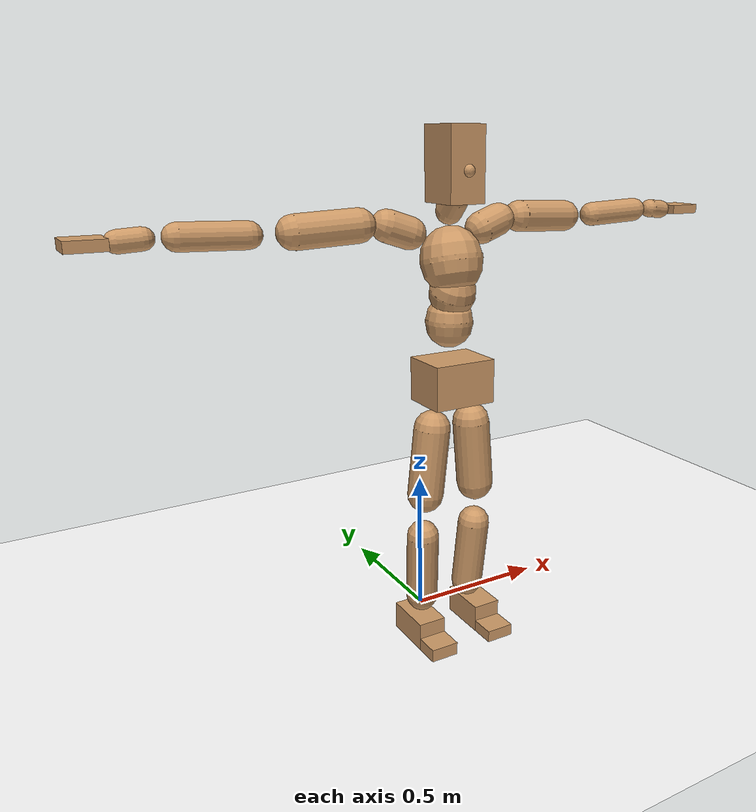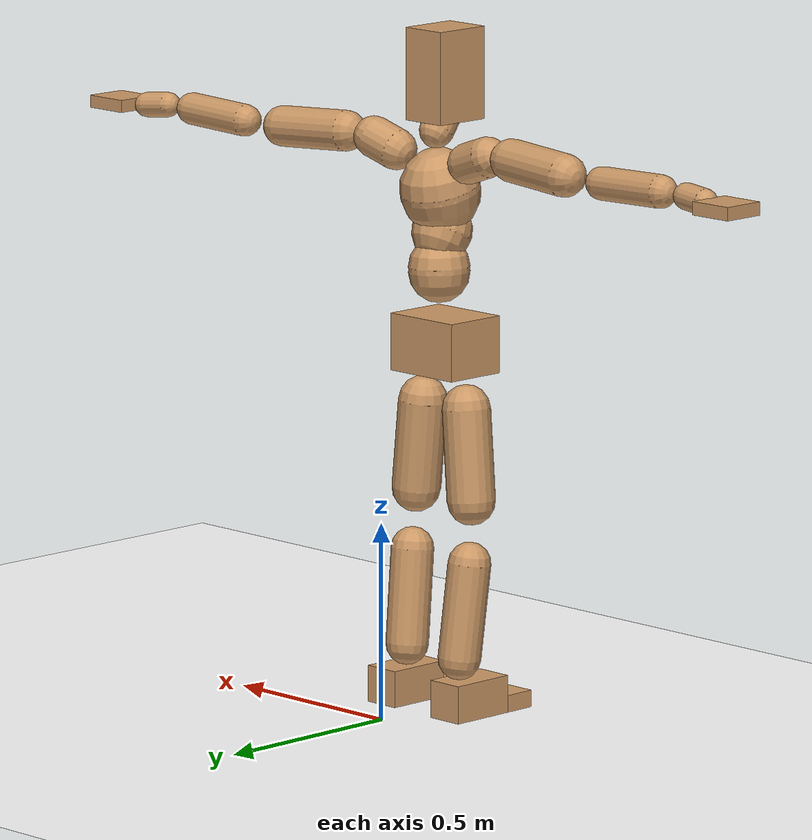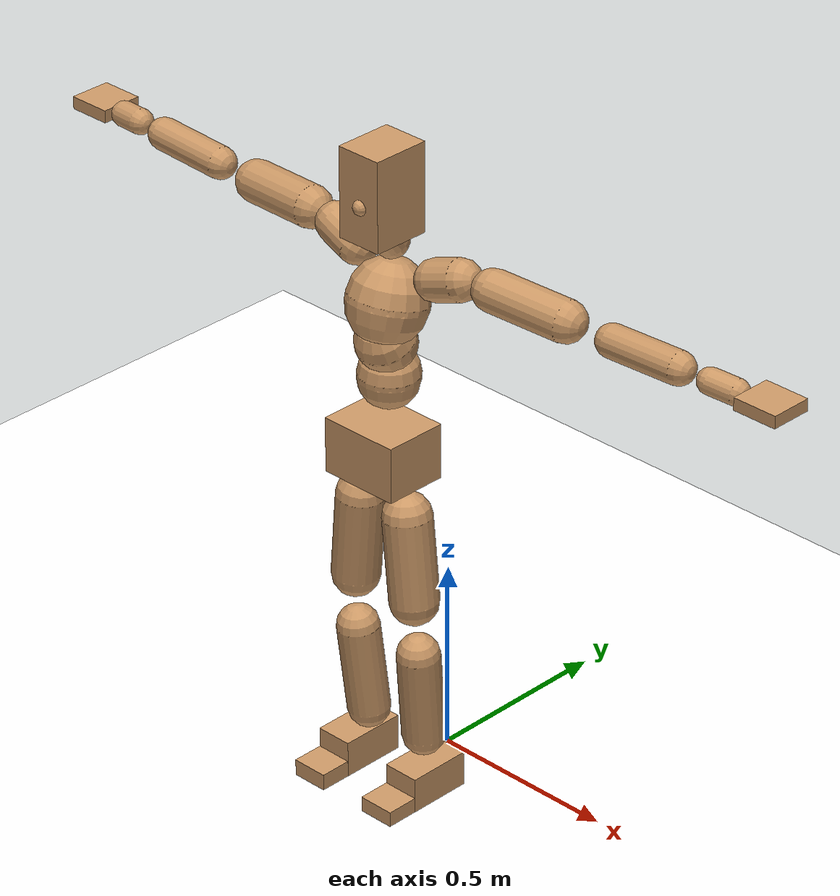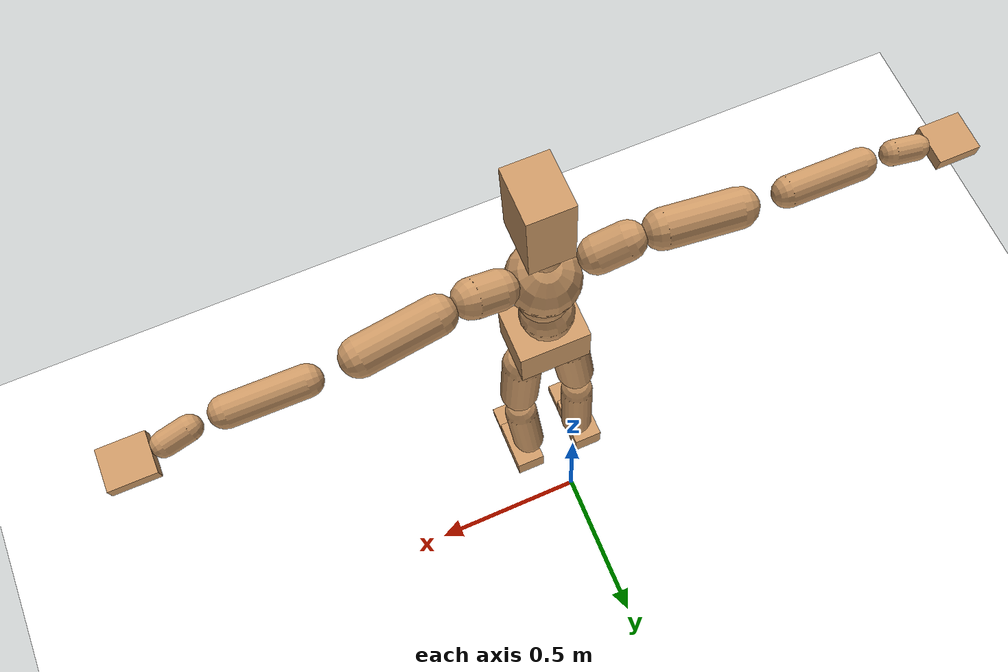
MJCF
<mujoco model="humanoid">
  <option integrator="implicitfast" />

  <visual>
    <global offwidth="1280" offheight="960" />
    <headlight active="1" ambient="0.34 0.34 0.34" diffuse="0.5 0.5 0.5" />
  </visual>

  <default>
    <joint damping="2" stiffness="2" armature="0.01" limited="true" solimplimit="0 .99 .01" />
    <geom condim="1" friction="0.7 0.005 0.0001" solimp=".99 .99 .003" solref="0.015 1" margin="0.001" rgba="0.8 0.6 .4 1" />
    <default class="smplcontact">
      <geom condim="3" friction="1. 0.005 0.0001" solref="0.015 1" solimp="0.98 0.98 0.001" priority="1" />
    </default>
    <default class="stiff_medium">
      <joint stiffness="10" />
    </default>
    <default class="stiff_medium_higher">
      <joint stiffness="50" />
    </default>
    <default class="stiff_high">
      <joint stiffness="100" />
    </default>
  </default>

  <asset>
    <texture type="skybox" builtin="gradient" rgb1="0.99 0.99 0.99" rgb2="0.608 0.828 0.892" width="100" />
    <texture builtin="flat" height="1278" mark="cross" markrgb="1 1 1" name="texgeom" random="0.01" rgb1="0.8 0.6 0.4" rgb2="0.8 0.6 0.4" type="cube" width="127" />
    <texture name="texplane" type="2d" builtin="checker" markrgb="1 1 1" rgb1="0.756 0.772 0.76" rgb2="0.6 0.6 0.6" width="100" height="100" />
    <material name="MatPlane" reflectance="0.5" texture="texplane" texrepeat="1 1" texuniform="true" />
    <material name="geom" texture="texgeom" texuniform="true" />
  </asset>

  <worldbody>
    <light name="tracking_light" pos="0 0 7" dir="0 0 -1" directional="true" cutoff="100" exponent="1" diffuse="1 1 1" specular="0.1 0.1 0.1" mode="trackcom" />
    <camera name="back" pos="0 3 2.4" xyaxes="-1 0 0 0 -1 2" mode="trackcom" />
    <camera name="side" pos="-3 0 2.4" xyaxes="0 -1 0 1 0 2" mode="trackcom" />
    <camera name="front_side" pos="-2.8 -2.8 0.8" xyaxes="0.5 -0.5 0 0.1 0.1 1" mode="trackcom" />
    <geom condim="3" name="floor" pos="0 0 0" rgba="1 1 1 1" size="100 100 .2" type="plane" material="MatPlane" />
    <body name="Pelvis" pos="-0.0018 -0.2233 0.9367" euler="90 0 0">
      <site name="Pelvis" size="0.01" />
      <freejoint name="Pelvis" />
      <geom type="box" pos="-0.0000 -0.0121 -0.0055" size="0.1069 0.0722 0.083" quat="1.0000 0.0000 0.0000 0.0000" density="3165.830099" name="Pelvis" />
      <body name="L_Hip" pos="0.0695 -0.0914 -0.0068">
        <joint name="L_Hip_x" type="hinge" pos="0 0 0" axis="1 0 0" stiffness="10.0" range="-160.0 22.92" class="stiff_medium" damping="15.0" armature="0.01"/>
        <joint name="L_Hip_y" type="hinge" pos="0 0 0" axis="0 1 0" stiffness="10.0" range="-70.0 70.0" class="stiff_medium" damping="10.000000000000004" armature="0.010000000000000009"/>
        <joint name="L_Hip_z" type="hinge" pos="0 0 0" axis="0 0 1" stiffness="10.0" range="-28.65 90.0" class="stiff_medium" damping="9.999999999999998" armature="0.009999999999999997"/>
        <geom type="capsule" density="2040.816327" fromto="0.0069 -0.075 -0.0009 0.0274 -0.3002 -0.0036" size="0.0615" name="L_Hip" />
        <body name="L_Knee" pos="0.0343 -0.3752 -0.0045">
          <joint name="L_Knee_x" type="hinge" pos="0 0 0" axis="1 0 0" range="-5.16 171.89" damping="8.000000000000004" armature="0.010000000000000009" stiffness="2.0"/>
          <joint name="L_Knee_y" type="hinge" pos="0 0 0" axis="0 1 0" range="-4.58 6.88" damping="8.0" armature="0.010000000000000002" stiffness="2.0"/>
          <joint name="L_Knee_z" type="hinge" pos="0 0 0" axis="0 0 1" range="-6.88 4.58" damping="7.999999999999998" armature="0.009999999999999997" stiffness="2.0"/>
          <geom type="capsule" density="1234.567901" fromto="-0.0027 -0.0796 -0.0087 -0.0109 -0.3184 -0.035" size="0.0541" name="L_Knee" />
          <body name="L_Ankle" pos="-0.0136 -0.398 -0.0437">
            <joint name="L_Ankle_x" type="hinge" pos="0 0 0" axis="1 0 0" range="-45.84 45.84" class="stiff_medium" damping="6.000000000000078" armature="0.010000000000000262" stiffness="10.0"/>
            <joint name="L_Ankle_y" type="hinge" pos="0 0 0" axis="0 1 0" range="-74.48 22.92" class="stiff_medium" damping="2.9999999999999996" armature="0.009999999999999998" stiffness="10.0"/>
            <joint name="L_Ankle_z" type="hinge" pos="0 0 0" axis="0 0 1" range="-4.58 4.58" class="stiff_medium" damping="6.000000000000021" armature="0.010000000000000071" stiffness="10.0"/>
            <geom type="box" pos="0.0233 -0.0239 0.0242" size="0.0483 0.0464 0.085" quat="1.0000 0.0000 0.0000 0.0000" density="449.071558" name="L_Ankle" class="smplcontact" />
            <body name="L_Toe" pos="0.0264 -0.0558 0.1193">
              <joint name="L_Toe_x" type="hinge" pos="0 0 0" axis="1 0 0" range="-91.67 22.92" armature="0.009999999999999738" damping="1.9999999999999738" stiffness="2.0"/>
              <joint name="L_Toe_y" type="hinge" pos="0 0 0" axis="0 1 0" range="-4.58 4.58" armature="0.009999999999999976" damping="1.9999999999999976" stiffness="2.0"/>
              <joint name="L_Toe_z" type="hinge" pos="0 0 0" axis="0 0 1" range="-4.58 4.58" armature="0.00999999999999993" damping="1.9999999999999931" stiffness="2.0"/>
              <geom type="box" pos="-0.003 0.0055 0.0248" size="0.0478 0.02 0.0496" quat="1.0000 0.0000 0.0000 0.0000" density="423.206892" name="L_Toe" class="smplcontact" />
            </body>
          </body>
        </body>
      </body>
      <body name="R_Hip" pos="-0.0677 -0.0905 -0.0043">
        <joint name="R_Hip_x" type="hinge" pos="0 0 0" axis="1 0 0" stiffness="10.0" range="-160.0 22.92" class="stiff_medium" damping="15.0" armature="0.01"/>
        <joint name="R_Hip_y" type="hinge" pos="0 0 0" axis="0 1 0" stiffness="10.0" range="-70.0 70.0" class="stiff_medium" damping="10.000000000000004" armature="0.010000000000000009"/>
        <joint name="R_Hip_z" type="hinge" pos="0 0 0" axis="0 0 1" stiffness="10.0" range="-90.0 28.65" class="stiff_medium" damping="9.999999999999998" armature="0.009999999999999997"/>
        <geom type="capsule" density="2040.816327" fromto="-0.0077 -0.0765 -0.0018 -0.0306 -0.3061 -0.0071" size="0.0606" name="R_Hip" />
        <body name="R_Knee" pos="-0.0383 -0.3826 -0.0089">
          <joint name="R_Knee_x" type="hinge" pos="0 0 0" axis="1 0 0" range="-5.16 171.89" damping="8.000000000000004" armature="0.010000000000000009" stiffness="2.0"/>
          <joint name="R_Knee_y" type="hinge" pos="0 0 0" axis="0 1 0" range="-6.88 4.58" damping="8.0" armature="0.010000000000000002" stiffness="2.0"/>
          <joint name="R_Knee_z" type="hinge" pos="0 0 0" axis="0 0 1" range="-4.58 6.88" damping="7.999999999999998" armature="0.009999999999999997" stiffness="2.0"/>
          <geom type="capsule" density="1234.567901" fromto="0.0032 -0.0797 -0.0085 0.0126 -0.3187 -0.0338" size="0.0541" name="R_Knee" />
          <body name="R_Ankle" pos="0.0158 -0.3984 -0.0423">
            <joint name="R_Ankle_x" type="hinge" pos="0 0 0" axis="1 0 0" range="-45.84 45.84" class="stiff_medium" damping="6.000000000000078" armature="0.010000000000000262" stiffness="10.0"/>
            <joint name="R_Ankle_y" type="hinge" pos="0 0 0" axis="0 1 0" range="-22.92 74.48" class="stiff_medium" damping="2.9999999999999996" armature="0.009999999999999998" stiffness="10.0"/>
            <joint name="R_Ankle_z" type="hinge" pos="0 0 0" axis="0 0 1" range="-4.58 4.58" class="stiff_medium" damping="6.000000000000021" armature="0.010000000000000071" stiffness="10.0"/>
            <geom type="box" pos="-0.0212 -0.0174 0.0256" size="0.0483 0.0478 0.0865" quat="1.0000 0.0000 0.0000 0.0000" density="434.700981" name="R_Ankle" class="smplcontact" />
            <body name="R_Toe" pos="-0.0254 -0.0481 0.1233">
              <joint name="R_Toe_x" type="hinge" pos="0 0 0" axis="1 0 0" range="-91.67 22.92" armature="0.009999999999999738" damping="1.9999999999999738" stiffness="2.0"/>
              <joint name="R_Toe_y" type="hinge" pos="0 0 0" axis="0 1 0" range="-4.58 4.58" armature="0.009999999999999976" damping="1.9999999999999976" stiffness="2.0"/>
              <joint name="R_Toe_z" type="hinge" pos="0 0 0" axis="0 0 1" range="-4.58 4.58" armature="0.00999999999999993" damping="1.9999999999999931" stiffness="2.0"/>
              <geom type="box" pos="0.0042 0.0045 0.0227" size="0.0479 0.0216 0.0493" quat="1.0000 0.0000 0.0000 0.0000" density="407.384095" name="R_Toe" class="smplcontact" />
            </body>
          </body>
        </body>
      </body>
      <body name="Torso" pos="-0.0025 0.109 -0.0267">
        <joint name="Torso_x" type="hinge" pos="0 0 0" axis="1 0 0" range="-25.78 57.3" class="stiff_medium" damping="16.944789177371323" armature="0.01157607956441883" stiffness="11.023723673469387"/>
        <joint name="Torso_y" type="hinge" pos="0 0 0" axis="0 1 0" range="-57.3 57.3" class="stiff_high" damping="29.115087567135376" armature="0.01937626790595331" stiffness="109.37198124999998"/>
        <joint name="Torso_z" type="hinge" pos="0 0 0" axis="0 0 1" range="-34.38 34.38" class="stiff_high" damping="24.64077151532871" armature="0.014228244849331766" stiffness="106.68350652173912"/>
        <geom type="capsule" density="2040.816327" fromto="0.0025 0.0608 0.0005 0.003 0.0743 0.0006" size="0.0769" name="Torso" />
        <body name="Spine" pos="0.0055 0.1352 0.0011">
          <joint name="Spine_x" type="hinge" pos="0 0 0" axis="1 0 0" stiffness="11.23382224489796" range="-25.78 57.3" class="stiff_medium" damping="17.411062309630786" armature="0.011993349058515361"/>
          <joint name="Spine_y" type="hinge" pos="0 0 0" axis="0 1 0" stiffness="11.67224088888889" range="-57.3 57.3" class="stiff_high" damping="12.051053820080996" armature="0.0194408762685534"/>
          <joint name="Spine_z" type="hinge" pos="0 0 0" axis="0 0 1" stiffness="22.9563125" range="-34.38 34.38" class="stiff_high" damping="16.317554444807215" armature="0.01610925723100537"/>
          <geom type="capsule" density="2040.816327" fromto="0.0007 0.0238 0.0114 0.0008 0.0291 0.014" size="0.0755" name="Spine" />
          <body name="Chest" pos="0.0015 0.0529 0.0254">
            <joint name="Chest_x" type="hinge" pos="0 0 0" axis="1 0 0" stiffness="11.776115531914895" range="-25.78 57.3" class="stiff_medium" damping="18.021102303759776" armature="0.012256829035287804"/>
            <joint name="Chest_y" type="hinge" pos="0 0 0" axis="0 1 0" stiffness="13.448267333333334" range="-57.3 57.3" class="stiff_high" damping="12.937740431789003" armature="0.019447803587290643"/>
            <joint name="Chest_z" type="hinge" pos="0 0 0" axis="0 0 1" stiffness="23.267014782608697" range="-34.38 34.38" class="stiff_high" damping="16.84752883262496" armature="0.016943348915127974"/>
            <geom type="capsule" density="2040.816327" fromto="-0.0009 0.0682 -0.0173 -0.001 0.0833 -0.0212" size="0.1002" name="Chest" />
            <body name="Neck" pos="-0.0028 0.2139 -0.0429">
              <joint name="Neck_x" type="hinge" pos="0 0 0" axis="1 0 0" range="-28.65 57.3" class="stiff_medium_higher" damping="10.0" armature="0.01" stiffness="50.0"/>
              <joint name="Neck_y" type="hinge" pos="0 0 0" axis="0 1 0" range="-40.11 40.11" class="stiff_medium_higher" damping="10.0" armature="0.01" stiffness="50.0"/>
              <joint name="Neck_z" type="hinge" pos="0 0 0" axis="0 0 1" range="-40.11 40.11" class="stiff_medium_higher" damping="9.999999999999996" armature="0.009999999999999992" stiffness="50.0"/>
              <geom type="capsule" density="1000" fromto="0.001 0.013 0.0103 0.0041 0.052 0.0411" size="0.0436" name="Neck" />
              <body name="Head" pos="0.0052 0.065 0.0513">
                <joint name="Head_x" type="hinge" pos="0 0 0" axis="1 0 0" range="-28.65 57.3" class="stiff_medium_higher" damping="2.0" armature="0.01" stiffness="50.0"/>
                <joint name="Head_y" type="hinge" pos="0 0 0" axis="0 1 0" range="-40.11 40.11" class="stiff_medium_higher" damping="2.0" armature="0.01" stiffness="50.0"/>
                <joint name="Head_z" type="hinge" pos="0 0 0" axis="0 0 1" range="-40.11 40.11" class="stiff_medium_higher" damping="1.999999999999999" armature="0.00999999999999999" stiffness="50.0"/>
                <geom type="box" pos="-0.0042 0.0876 -0.0116" size="0.0606 0.1154 0.076" quat="1.0000 0.0000 0.0000 0.0000" density="1018.069894" name="Head" />
                <geom type="capsule" name="nose" size="0.02 0.01" pos="0 0.07 0.05" quat="1 0 0 0" mass="0" contype="0" conaffinity="0" />
              </body>
            </body>
            <body name="L_Thorax" pos="0.10244 0.15821 -0.04433">
              <joint name="L_Thorax_x" type="hinge" pos="0 0 0" axis="1 0 0" range="-10.89 4.58" class="stiff_medium_higher" damping="31.589735797957896" armature="0.016223873504270347" stiffness="76.88603214285715"/>
              <joint name="L_Thorax_y" type="hinge" pos="0 0 0" axis="0 1 0" range="-28.65 17.19" class="stiff_medium_higher" damping="34.89989559971406" armature="0.01967496307175568" stiffness="77.38278265306123"/>
              <joint name="L_Thorax_z" type="hinge" pos="0 0 0" axis="0 0 1" range="-31.51 40.11" class="stiff_medium_higher" damping="34.901462278801546" armature="0.019678125977203677" stiffness="77.37729132653061"/>
              <geom type="capsule" density="1000" fromto="0.02366 0.00793 -0.00234 0.09464 0.03172 -0.00923" size="0.0521" name="L_Thorax" />
              <body name="L_Shoulder" pos="0.1183 0.03965 -0.01157">
                <joint name="L_Shoulder_x" type="hinge" pos="0 0 0" axis="1 0 0" range="-97.4 97.4" class="stiff_medium" damping="9.029989056678943" armature="0.014800063709013845" stiffness="15.304120000000001"/>
                <joint name="L_Shoulder_y" type="hinge" pos="0 0 0" axis="0 1 0" range="-108.86 80.21" class="stiff_medium" damping="10.416659800941957" armature="0.0195217219685209" stiffness="15.439610408163267"/>
                <joint name="L_Shoulder_z" type="hinge" pos="0 0 0" axis="0 0 1" range="-97.4 85.94" class="stiff_medium" damping="10.414978319288075" armature="0.0195255276816531" stiffness="15.431617857142857"/>
                <geom type="capsule" density="1000" fromto="0.06747 -0.00338 -0.00715 0.27001 -0.01326 -0.0286" size="0.0517" name="L_Shoulder" />
                <body name="L_Elbow" pos="0.33748 -0.01664 -0.03575">
                  <joint name="L_Elbow_x" type="hinge" pos="0 0 0" axis="1 0 0" range="-17.19 4.58" damping="6.893935965131382" armature="0.012655354053031203" stiffness="3.0043475918367353"/>
                  <joint name="L_Elbow_y" type="hinge" pos="0 0 0" axis="0 1 0" range="-180.0 17.19" damping="8.400044856786575" armature="0.0187809014242655" stiffness="3.005638632653061"/>
                  <joint name="L_Elbow_z" type="hinge" pos="0 0 0" axis="0 0 1" range="-100.84 4.58" damping="8.401427491655664" armature="0.01880082195466483" stiffness="3.003442469387755"/>
                  <geom type="capsule" density="1000" fromto="0.06474 0.00234 -0.00026 0.25922 0.00936 -0.00117" size="0.0405" name="L_Elbow" />
                  <body name="L_Wrist" pos="0.32396 0.0117 -0.00156">
                    <joint name="L_Wrist_x" type="hinge" pos="0 0 0" axis="1 0 0" range="-180.0 22.92" armature="0.012290327941727857" damping="2.59578339402788" stiffness="2.7412171020408165"/>
                    <joint name="L_Wrist_y" type="hinge" pos="0 0 0" axis="0 1 0" range="-17.19 17.19" armature="0.016530608092611376" damping="3.0218064127612174" stiffness="2.7619413469387752"/>
                    <joint name="L_Wrist_z" type="hinge" pos="0 0 0" axis="0 0 1" range="-22.92 22.92" armature="0.016761001490565943" damping="3.038183618728776" stiffness="2.7535823877551024"/>
                    <geom type="capsule" density="1000" fromto="0.02184 -0.00208 -0.0039 0.08736 -0.00845 -0.0156" size="0.0318" name="L_Wrist" class="smplcontact" />
                    <body name="L_Hand" pos="0.1092 -0.01066 -0.01937">
                      <joint name="L_Hand_x" type="hinge" pos="0 0 0" axis="1 0 0" range="-17.19 17.19" armature="0.01030060650759159" damping="2.3143714878877217" stiffness="2.5999999999999996"/>
                      <joint name="L_Hand_y" type="hinge" pos="0 0 0" axis="0 1 0" range="-51.57 51.57" armature="0.013635420978089046" damping="2.662784052191672" stiffness="2.5999999999999996"/>
                      <joint name="L_Hand_z" type="hinge" pos="0 0 0" axis="0 0 1" range="-91.67 91.67" armature="0.014524361339041496" damping="2.7482117633656937" stiffness="2.5999999999999996"/>
                      <geom type="box" pos="0.06409 0.0013 -0.00754" size="0.0585 0.0158 0.0538" quat="1.0000 0.0000 0.0000 0.0000" density="400.552564" name="L_Hand" class="smplcontact" />
                    </body>
                  </body>
                </body>
              </body>
            </body>
            <body name="R_Thorax" pos="-0.10634 0.15444 -0.05018">
              <joint name="R_Thorax_x" type="hinge" pos="0 0 0" axis="1 0 0" range="-10.89 4.58" class="stiff_medium_higher" damping="31.589735797957896" armature="0.016223873504270347" stiffness="76.88603214285715"/>
              <joint name="R_Thorax_y" type="hinge" pos="0 0 0" axis="0 1 0" range="-17.19 28.65" class="stiff_medium_higher" damping="34.89989559971406" armature="0.01967496307175568" stiffness="77.38278265306123"/>
              <joint name="R_Thorax_z" type="hinge" pos="0 0 0" axis="0 0 1" range="-40.11 31.51" class="stiff_medium_higher" damping="34.901462278801546" armature="0.019678125977203677" stiffness="77.37729132653061"/>
              <geom type="capsule" density="1000" fromto="-0.02496 0.00845 -0.00234 -0.09984 0.0338 -0.00949" size="0.0511" name="R_Thorax" />
              <body name="R_Shoulder" pos="-0.1248 0.04238 -0.01183">
                <joint name="R_Shoulder_x" type="hinge" pos="0 0 0" axis="1 0 0" range="-97.4 97.4" class="stiff_medium" damping="9.029989056678943" armature="0.014800063709013845" stiffness="15.304120000000001"/>
                <joint name="R_Shoulder_y" type="hinge" pos="0 0 0" axis="0 1 0" range="-80.21 108.86" class="stiff_medium" damping="10.416659800941957" armature="0.0195217219685209" stiffness="15.439610408163267"/>
                <joint name="R_Shoulder_z" type="hinge" pos="0 0 0" axis="0 0 1" range="-85.94 97.4" class="stiff_medium" damping="10.414978319288075" armature="0.0195255276816531" stiffness="15.431617857142857"/>
                <geom type="capsule" density="1000" fromto="-0.06591 -0.00351 -0.00559 -0.2639 -0.01391 -0.02223" size="0.0531" name="R_Shoulder" />
                <body name="R_Elbow" pos="-0.32981 -0.01729 -0.02782">
                  <joint name="R_Elbow_x" type="hinge" pos="0 0 0" axis="1 0 0" range="-17.19 4.58" damping="6.893935965131382" armature="0.012655354053031203" stiffness="3.0043475918367353"/>
                  <joint name="R_Elbow_y" type="hinge" pos="0 0 0" axis="0 1 0" range="-17.19 180.0" damping="8.400044856786575" armature="0.0187809014242655" stiffness="3.005638632653061"/>
                  <joint name="R_Elbow_z" type="hinge" pos="0 0 0" axis="0 0 1" range="-4.58 100.84" damping="8.401427491655664" armature="0.01880082195466483" stiffness="3.003442469387755"/>
                  <geom type="capsule" density="1000" fromto="-0.06643 0.00208 -0.00143 -0.26546 0.00806 -0.00572" size="0.0408" name="R_Elbow" />
                  <body name="R_Wrist" pos="-0.33189 0.01014 -0.00728">
                    <joint name="R_Wrist_x" type="hinge" pos="0 0 0" axis="1 0 0" range="-180.0 22.92" armature="0.012290327941727857" damping="2.59578339402788" stiffness="2.7412171020408165"/>
                    <joint name="R_Wrist_y" type="hinge" pos="0 0 0" axis="0 1 0" range="-17.19 17.19" armature="0.016530608092611376" damping="3.0218064127612174" stiffness="2.7619413469387752"/>
                    <joint name="R_Wrist_z" type="hinge" pos="0 0 0" axis="0 0 1" range="-22.92 22.92" armature="0.016761001490565943" damping="3.038183618728776" stiffness="2.7535823877551024"/>
                    <geom type="capsule" density="1000" fromto="-0.02197 -0.00156 -0.00273 -0.08801 -0.00637 -0.01079" size="0.0326" name="R_Wrist" class="smplcontact" />
                    <body name="R_Hand" pos="-0.10998 -0.00793 -0.01339">
                      <joint name="R_Hand_x" type="hinge" pos="0 0 0" axis="1 0 0" range="-17.19 17.19" armature="0.01030060650759159" damping="2.3143714878877217" stiffness="2.5999999999999996"/>
                      <joint name="R_Hand_y" type="hinge" pos="0 0 0" axis="0 1 0" range="-51.57 51.57" armature="0.013635420978089046" damping="2.662784052191672" stiffness="2.5999999999999996"/>
                      <joint name="R_Hand_z" type="hinge" pos="0 0 0" axis="0 0 1" range="-91.67 91.67" armature="0.014524361339041496" damping="2.7482117633656937" stiffness="2.5999999999999996"/>
                      <geom type="box" pos="-0.06006 -0.00117 -0.01027" size="0.0569 0.0164 0.0546" quat="1.0000 0.0000 0.0000 0.0000" density="403.679611" name="R_Hand" class="smplcontact" />
                    </body>
                  </body>
                </body>
              </body>
            </body>
          </body>
        </body>
      </body>
    </body>
  </worldbody>
  <actuator>
    <general name="L_Hip_x" joint="L_Hip_x" biastype="affine" gainprm="287.33006409732246" biasprm="-215.3247604770444 -180.0 -2.0" ctrllimited="true" ctrlrange="-1 1" forcerange="-360.0 360.0" />
    <general name="L_Hip_y" joint="L_Hip_y" biastype="affine" gainprm="219.9114857512855" biasprm="0.0 -180.0 -2.000000000000001" ctrllimited="true" ctrlrange="-1 1" forcerange="-360.0 360.0" />
    <general name="L_Hip_z" joint="L_Hip_z" biastype="affine" gainprm="186.3749841742145" biasprm="96.3683546488669 -180.0 -1.9999999999999996" ctrllimited="true" ctrlrange="-1 1" forcerange="-360.0 360.0" />
    <general name="L_Knee_x" joint="L_Knee_x" biastype="affine" gainprm="278.10948965903646" biasprm="261.8988715665131 -180.0 -2.000000000000001" ctrllimited="true" ctrlrange="-1 1" forcerange="-360.0 360.0" />
    <general name="L_Knee_y" joint="L_Knee_y" biastype="affine" gainprm="18.001325905069514" biasprm="3.612831551628262 -180.0 -2.0" ctrllimited="true" ctrlrange="-1 1" forcerange="-360.0 360.0" />
    <general name="L_Knee_z" joint="L_Knee_z" biastype="affine" gainprm="18.001325905069514" biasprm="-3.612831551628262 -180.0 -1.9999999999999996" ctrllimited="true" ctrlrange="-1 1" forcerange="-360.0 360.0" />
    <general name="L_Ankle_x" joint="L_Ankle_x" biastype="affine" gainprm="72.00530362027807" biasprm="0.0 -90.0 -2.000000000000026" ctrllimited="true" ctrlrange="-1 1" forcerange="-180.0 180.0" />
    <general name="L_Ankle_y" joint="L_Ankle_y" biastype="affine" gainprm="76.49778111491148" biasprm="-40.49512930477244 -90.0 -1.9999999999999998" ctrllimited="true" ctrlrange="-1 1" forcerange="-180.0 180.0" />
    <general name="L_Ankle_z" joint="L_Ankle_z" biastype="affine" gainprm="7.1942471767206255" biasprm="0.0 -90.0 -2.000000000000007" ctrllimited="true" ctrlrange="-1 1" forcerange="-180.0 180.0" />
    <general name="L_Toe_x" joint="L_Toe_x" biastype="affine" gainprm="71.99902043497087" biasprm="-43.19689898685965 -72.0 -0.7999999999999896" ctrllimited="true" ctrlrange="-1 1" forcerange="-144.0 144.0" />
    <general name="L_Toe_y" joint="L_Toe_y" biastype="affine" gainprm="5.755397741376501" biasprm="0.0 -72.0 -0.799999999999999" ctrllimited="true" ctrlrange="-1 1" forcerange="-144.0 144.0" />
    <general name="L_Toe_z" joint="L_Toe_z" biastype="affine" gainprm="5.755397741376501" biasprm="0.0 -72.0 -0.7999999999999973" ctrllimited="true" ctrlrange="-1 1" forcerange="-144.0 144.0" />
    <general name="R_Hip_x" joint="R_Hip_x" biastype="affine" gainprm="287.33006409732246" biasprm="-215.3247604770444 -180.0 -2.0" ctrllimited="true" ctrlrange="-1 1" forcerange="-360.0 360.0" />
    <general name="R_Hip_y" joint="R_Hip_y" biastype="affine" gainprm="219.9114857512855" biasprm="0.0 -180.0 -2.000000000000001" ctrllimited="true" ctrlrange="-1 1" forcerange="-360.0 360.0" />
    <general name="R_Hip_z" joint="R_Hip_z" biastype="affine" gainprm="186.3749841742145" biasprm="-96.3683546488669 -180.0 -1.9999999999999996" ctrllimited="true" ctrlrange="-1 1" forcerange="-360.0 360.0" />
    <general name="R_Knee_x" joint="R_Knee_x" biastype="affine" gainprm="278.10948965903646" biasprm="261.8988715665131 -180.0 -2.000000000000001" ctrllimited="true" ctrlrange="-1 1" forcerange="-360.0 360.0" />
    <general name="R_Knee_y" joint="R_Knee_y" biastype="affine" gainprm="18.001325905069514" biasprm="-3.612831551628262 -180.0 -2.0" ctrllimited="true" ctrlrange="-1 1" forcerange="-360.0 360.0" />
    <general name="R_Knee_z" joint="R_Knee_z" biastype="affine" gainprm="18.001325905069514" biasprm="3.612831551628262 -180.0 -1.9999999999999996" ctrllimited="true" ctrlrange="-1 1" forcerange="-360.0 360.0" />
    <general name="R_Ankle_x" joint="R_Ankle_x" biastype="affine" gainprm="72.00530362027807" biasprm="0.0 -90.0 -2.000000000000026" ctrllimited="true" ctrlrange="-1 1" forcerange="-180.0 180.0" />
    <general name="R_Ankle_y" joint="R_Ankle_y" biastype="affine" gainprm="76.49778111491148" biasprm="40.49512930477244 -90.0 -1.9999999999999998" ctrllimited="true" ctrlrange="-1 1" forcerange="-180.0 180.0" />
    <general name="R_Ankle_z" joint="R_Ankle_z" biastype="affine" gainprm="7.1942471767206255" biasprm="0.0 -90.0 -2.000000000000007" ctrllimited="true" ctrlrange="-1 1" forcerange="-180.0 180.0" />
    <general name="R_Toe_x" joint="R_Toe_x" biastype="affine" gainprm="71.99902043497087" biasprm="-43.19689898685965 -72.0 -0.7999999999999896" ctrllimited="true" ctrlrange="-1 1" forcerange="-144.0 144.0" />
    <general name="R_Toe_y" joint="R_Toe_y" biastype="affine" gainprm="5.755397741376501" biasprm="0.0 -72.0 -0.799999999999999" ctrllimited="true" ctrlrange="-1 1" forcerange="-144.0 144.0" />
    <general name="R_Toe_z" joint="R_Toe_z" biastype="affine" gainprm="5.755397741376501" biasprm="0.0 -72.0 -0.7999999999999973" ctrllimited="true" ctrlrange="-1 1" forcerange="-144.0 144.0" />
    <general name="Torso_x" joint="Torso_x" biastype="affine" gainprm="191.81537709933156" biasprm="72.77347961207185 -264.5693681632653 -4.51861044729902" ctrllimited="true" ctrlrange="-1 1" forcerange="-396.85405224489796 396.85405224489796" />
    <general name="Torso_y" joint="Torso_y" biastype="affine" gainprm="262.51209058192023" biasprm="0.0 -262.492755 -5.823017513427075" ctrllimited="true" ctrlrange="-1 1" forcerange="-393.7391324999999 393.7391324999999" />
    <general name="Torso_z" joint="Torso_z" biastype="affine" gainprm="153.63556556747483" biasprm="0.0 -256.0404156521739 -4.9281543030657415" ctrllimited="true" ctrlrange="-1 1" forcerange="-384.0606234782608 384.0606234782608" />
    <general name="Spine_x" joint="Spine_x" biastype="affine" gainprm="195.47114151254812" biasprm="74.16045234082229 -269.61173387755105 -4.642949949234876" ctrllimited="true" ctrlrange="-1 1" forcerange="-404.41760081632657 404.41760081632657" />
    <general name="Spine_y" joint="Spine_y" biastype="affine" gainprm="280.1544163778229" biasprm="0.0 -280.13378133333333 -6.025526910040498" ctrllimited="true" ctrlrange="-1 1" forcerange="-420.200672 420.200672" />
    <general name="Spine_z" joint="Spine_z" biastype="affine" gainprm="165.29762515644848" biasprm="0.0 -275.47575 -5.439184814935738" ctrllimited="true" ctrlrange="-1 1" forcerange="-413.213625 413.213625" />
    <general name="Chest_x" joint="Chest_x" biastype="affine" gainprm="204.90717188021173" biasprm="77.74041956745634 -282.62677276595747 -4.805627281002606" ctrllimited="true" ctrlrange="-1 1" forcerange="-423.94015914893623 423.94015914893623" />
    <general name="Chest_y" joint="Chest_y" biastype="affine" gainprm="322.78219083444463" biasprm="0.0 -322.758416 -6.468870215894501" ctrllimited="true" ctrlrange="-1 1" forcerange="-484.1376240000001 484.1376240000001" />
    <general name="Chest_z" joint="Chest_z" biastype="affine" gainprm="167.53484637592376" biasprm="0.0 -279.20417739130437 -5.61584294420832" ctrllimited="true" ctrlrange="-1 1" forcerange="-418.8062660869566 418.8062660869566" />
    <general name="Neck_x" joint="Neck_x" biastype="affine" gainprm="27.00198885760427" biasprm="9.000662952534757 -36.0 -0.8" ctrllimited="true" ctrlrange="-1 1" forcerange="-72.0 72.0" />
    <general name="Neck_y" joint="Neck_y" biastype="affine" gainprm="25.20185626709732" biasprm="0.0 -36.0 -0.8" ctrllimited="true" ctrlrange="-1 1" forcerange="-72.0 72.0" />
    <general name="Neck_z" joint="Neck_z" biastype="affine" gainprm="25.20185626709732" biasprm="0.0 -36.0 -0.7999999999999997" ctrllimited="true" ctrlrange="-1 1" forcerange="-72.0 72.0" />
    <general name="Head_x" joint="Head_x" biastype="affine" gainprm="18.001325905069514" biasprm="6.000441968356505 -24.0 -0.8" ctrllimited="true" ctrlrange="-1 1" forcerange="-48.0 48.0" />
    <general name="Head_y" joint="Head_y" biastype="affine" gainprm="16.801237511398213" biasprm="0.0 -24.0 -0.8" ctrllimited="true" ctrlrange="-1 1" forcerange="-48.0 48.0" />
    <general name="Head_z" joint="Head_z" biastype="affine" gainprm="16.801237511398213" biasprm="0.0 -24.0 -0.7999999999999996" ctrllimited="true" ctrlrange="-1 1" forcerange="-48.0 48.0" />
    <general name="L_Thorax_x" joint="L_Thorax_x" biastype="affine" gainprm="24.911299101430362" biasprm="-10.160975910150333 -184.52647714285715 -2.5271788638366317" ctrllimited="true" ctrlrange="-1 1" forcerange="-369.0529542857143 369.0529542857143" />
    <general name="L_Thorax_y" joint="L_Thorax_y" biastype="affine" gainprm="74.29294346554212" biasprm="-18.57323586638553 -185.71867836734694 -2.7919916479771247" ctrllimited="true" ctrlrange="-1 1" forcerange="-371.4373567346939 371.4373567346939" />
    <general name="L_Thorax_z" joint="L_Thorax_z" biastype="affine" gainprm="116.06638363736599" biasprm="13.937041319203399 -185.70549918367348 -2.792116982304124" ctrllimited="true" ctrlrange="-1 1" forcerange="-371.41099836734696 371.41099836734696" />
    <general name="L_Shoulder_x" joint="L_Shoulder_x" biastype="affine" gainprm="124.8779970044095" biasprm="0.0 -73.459776 -2.4079970817810517" ctrllimited="true" ctrlrange="-1 1" forcerange="-146.919552 146.919552" />
    <general name="L_Shoulder_y" joint="L_Shoulder_y" biastype="affine" gainprm="122.27778721627745" biasprm="-18.528897253643354 -74.11012995918368 -2.7777759469178553" ctrllimited="true" ctrlrange="-1 1" forcerange="-148.22025991836736 148.22025991836736" />
    <general name="L_Shoulder_z" joint="L_Shoulder_z" biastype="affine" gainprm="118.51062714799397" biasprm="-7.40772219437119 -74.0717657142857 -2.7773275518101532" ctrllimited="true" ctrlrange="-1 1" forcerange="-148.1435314285714 148.1435314285714" />
    <general name="L_Elbow_x" joint="L_Elbow_x" biastype="affine" gainprm="20.54747587592092" biasprm="-11.901868203737386 -108.15651330612246 -1.103029754421021" ctrllimited="true" ctrlrange="-1 1" forcerange="-216.31302661224493 216.31302661224493" />
    <general name="L_Elbow_y" joint="L_Elbow_y" biastype="affine" gainprm="186.19650463217005" biasprm="-153.73321628461693 -108.20299077551019 -1.3440071770858522" ctrllimited="true" ctrlrange="-1 1" forcerange="-216.40598155102037 216.40598155102037" />
    <general name="L_Elbow_z" joint="L_Elbow_z" biastype="affine" gainprm="99.4700192692226" biasprm="-90.82701626688834 -108.12392889795919 -1.3442283986649062" ctrllimited="true" ctrlrange="-1 1" forcerange="-216.24785779591838 216.24785779591838" />
    <general name="L_Wrist_x" joint="L_Wrist_x" biastype="affine" gainprm="29.125065357690858" biasprm="-22.545659700305933 -16.447302612244897 -1.038313357611152" ctrllimited="true" ctrlrange="-1 1" forcerange="-32.894605224489794 32.894605224489794" />
    <general name="L_Wrist_y" joint="L_Wrist_y" biastype="affine" gainprm="4.971860631693158" biasprm="0.0 -16.571648081632652 -1.208722565104487" ctrllimited="true" ctrlrange="-1 1" forcerange="-33.143296163265305 33.143296163265305" />
    <general name="L_Wrist_z" joint="L_Wrist_z" biastype="affine" gainprm="6.609084529125214" biasprm="0.0 -16.521494326530615 -1.2152734474915103" ctrllimited="true" ctrlrange="-1 1" forcerange="-33.04298865306123 33.04298865306123" />
    <general name="L_Hand_x" joint="L_Hand_x" biastype="affine" gainprm="4.680344735318074" biasprm="0.0 -15.599999999999998 -0.9257485951550888" ctrllimited="true" ctrlrange="-1 1" forcerange="-31.199999999999996 31.199999999999996" />
    <general name="L_Hand_y" joint="L_Hand_y" biastype="affine" gainprm="14.041034205954219" biasprm="0.0 -15.599999999999998 -1.065113620876669" ctrllimited="true" ctrlrange="-1 1" forcerange="-31.199999999999996 31.199999999999996" />
    <general name="L_Hand_z" joint="L_Hand_z" biastype="affine" gainprm="24.959115874729946" biasprm="0.0 -15.599999999999998 -1.0992847053462775" ctrllimited="true" ctrlrange="-1 1" forcerange="-31.199999999999996 31.199999999999996" />
    <general name="R_Thorax_x" joint="R_Thorax_x" biastype="affine" gainprm="24.911299101430362" biasprm="-10.160975910150333 -184.52647714285715 -2.5271788638366317" ctrllimited="true" ctrlrange="-1 1" forcerange="-369.0529542857143 369.0529542857143" />
    <general name="R_Thorax_y" joint="R_Thorax_y" biastype="affine" gainprm="74.29294346554212" biasprm="18.57323586638552 -185.71867836734694 -2.7919916479771247" ctrllimited="true" ctrlrange="-1 1" forcerange="-371.4373567346939 371.4373567346939" />
    <general name="R_Thorax_z" joint="R_Thorax_z" biastype="affine" gainprm="116.06638363736599" biasprm="-13.937041319203399 -185.70549918367348 -2.792116982304124" ctrllimited="true" ctrlrange="-1 1" forcerange="-371.41099836734696 371.41099836734696" />
    <general name="R_Shoulder_x" joint="R_Shoulder_x" biastype="affine" gainprm="124.8779970044095" biasprm="0.0 -73.459776 -2.4079970817810517" ctrllimited="true" ctrlrange="-1 1" forcerange="-146.919552 146.919552" />
    <general name="R_Shoulder_y" joint="R_Shoulder_y" biastype="affine" gainprm="122.27778721627745" biasprm="18.528897253643354 -74.11012995918368 -2.7777759469178553" ctrllimited="true" ctrlrange="-1 1" forcerange="-148.22025991836736 148.22025991836736" />
    <general name="R_Shoulder_z" joint="R_Shoulder_z" biastype="affine" gainprm="118.51062714799397" biasprm="7.407722194371173 -74.0717657142857 -2.7773275518101532" ctrllimited="true" ctrlrange="-1 1" forcerange="-148.1435314285714 148.1435314285714" />
    <general name="R_Elbow_x" joint="R_Elbow_x" biastype="affine" gainprm="20.54747587592092" biasprm="-11.901868203737386 -108.15651330612246 -1.103029754421021" ctrllimited="true" ctrlrange="-1 1" forcerange="-216.31302661224493 216.31302661224493" />
    <general name="R_Elbow_y" joint="R_Elbow_y" biastype="affine" gainprm="186.19650463217005" biasprm="153.73321628461693 -108.20299077551019 -1.3440071770858522" ctrllimited="true" ctrlrange="-1 1" forcerange="-216.40598155102037 216.40598155102037" />
    <general name="R_Elbow_z" joint="R_Elbow_z" biastype="affine" gainprm="99.4700192692226" biasprm="90.82701626688832 -108.12392889795919 -1.3442283986649062" ctrllimited="true" ctrlrange="-1 1" forcerange="-216.24785779591838 216.24785779591838" />
    <general name="R_Wrist_x" joint="R_Wrist_x" biastype="affine" gainprm="29.125065357690858" biasprm="-22.545659700305933 -16.447302612244897 -1.038313357611152" ctrllimited="true" ctrlrange="-1 1" forcerange="-32.894605224489794 32.894605224489794" />
    <general name="R_Wrist_y" joint="R_Wrist_y" biastype="affine" gainprm="4.971860631693158" biasprm="0.0 -16.571648081632652 -1.208722565104487" ctrllimited="true" ctrlrange="-1 1" forcerange="-33.143296163265305 33.143296163265305" />
    <general name="R_Wrist_z" joint="R_Wrist_z" biastype="affine" gainprm="6.609084529125214" biasprm="0.0 -16.521494326530615 -1.2152734474915103" ctrllimited="true" ctrlrange="-1 1" forcerange="-33.04298865306123 33.04298865306123" />
    <general name="R_Hand_x" joint="R_Hand_x" biastype="affine" gainprm="4.680344735318074" biasprm="0.0 -15.599999999999998 -0.9257485951550888" ctrllimited="true" ctrlrange="-1 1" forcerange="-31.199999999999996 31.199999999999996" />
    <general name="R_Hand_y" joint="R_Hand_y" biastype="affine" gainprm="14.041034205954219" biasprm="0.0 -15.599999999999998 -1.065113620876669" ctrllimited="true" ctrlrange="-1 1" forcerange="-31.199999999999996 31.199999999999996" />
    <general name="R_Hand_z" joint="R_Hand_z" biastype="affine" gainprm="24.959115874729946" biasprm="0.0 -15.599999999999998 -1.0992847053462775" ctrllimited="true" ctrlrange="-1 1" forcerange="-31.199999999999996 31.199999999999996" />
  </actuator>
  <contact>
    <exclude body1="Torso" body2="Chest" />
    <exclude body1="Head" body2="Chest" />
    <exclude body1="R_Knee" body2="R_Toe" />
    <exclude body1="R_Knee" body2="L_Ankle" />
    <exclude body1="R_Knee" body2="L_Toe" />
    <exclude body1="L_Knee" body2="L_Toe" />
    <exclude body1="L_Knee" body2="R_Ankle" />
    <exclude body1="L_Knee" body2="R_Toe" />
    <exclude body1="L_Shoulder" body2="Chest" />
    <exclude body1="R_Shoulder" body2="Chest" />
  </contact>
  <sensor>
    <framelinvel name="sensor_Pelvis_framelinvel" objtype="xbody" objname="Pelvis" />
    <framelinvel name="sensor_L_Hip_framelinvel" objtype="xbody" objname="L_Hip" />
    <framelinvel name="sensor_L_Knee_framelinvel" objtype="xbody" objname="L_Knee" />
    <framelinvel name="sensor_L_Ankle_framelinvel" objtype="xbody" objname="L_Ankle" />
    <framelinvel name="sensor_L_Toe_framelinvel" objtype="xbody" objname="L_Toe" />
    <framelinvel name="sensor_R_Hip_framelinvel" objtype="xbody" objname="R_Hip" />
    <framelinvel name="sensor_R_Knee_framelinvel" objtype="xbody" objname="R_Knee" />
    <framelinvel name="sensor_R_Ankle_framelinvel" objtype="xbody" objname="R_Ankle" />
    <framelinvel name="sensor_R_Toe_framelinvel" objtype="xbody" objname="R_Toe" />
    <framelinvel name="sensor_Torso_framelinvel" objtype="xbody" objname="Torso" />
    <framelinvel name="sensor_Spine_framelinvel" objtype="xbody" objname="Spine" />
    <framelinvel name="sensor_Chest_framelinvel" objtype="xbody" objname="Chest" />
    <framelinvel name="sensor_Neck_framelinvel" objtype="xbody" objname="Neck" />
    <framelinvel name="sensor_Head_framelinvel" objtype="xbody" objname="Head" />
    <framelinvel name="sensor_L_Thorax_framelinvel" objtype="xbody" objname="L_Thorax" />
    <framelinvel name="sensor_L_Shoulder_framelinvel" objtype="xbody" objname="L_Shoulder" />
    <framelinvel name="sensor_L_Elbow_framelinvel" objtype="xbody" objname="L_Elbow" />
    <framelinvel name="sensor_L_Wrist_framelinvel" objtype="xbody" objname="L_Wrist" />
    <framelinvel name="sensor_L_Hand_framelinvel" objtype="xbody" objname="L_Hand" />
    <framelinvel name="sensor_R_Thorax_framelinvel" objtype="xbody" objname="R_Thorax" />
    <framelinvel name="sensor_R_Shoulder_framelinvel" objtype="xbody" objname="R_Shoulder" />
    <framelinvel name="sensor_R_Elbow_framelinvel" objtype="xbody" objname="R_Elbow" />
    <framelinvel name="sensor_R_Wrist_framelinvel" objtype="xbody" objname="R_Wrist" />
    <framelinvel name="sensor_R_Hand_framelinvel" objtype="xbody" objname="R_Hand" />
    <frameangvel name="sensor_Pelvis_frameangvel" objtype="xbody" objname="Pelvis" />
    <frameangvel name="sensor_L_Hip_frameangvel" objtype="xbody" objname="L_Hip" />
    <frameangvel name="sensor_L_Knee_frameangvel" objtype="xbody" objname="L_Knee" />
    <frameangvel name="sensor_L_Ankle_frameangvel" objtype="xbody" objname="L_Ankle" />
    <frameangvel name="sensor_L_Toe_frameangvel" objtype="xbody" objname="L_Toe" />
    <frameangvel name="sensor_R_Hip_frameangvel" objtype="xbody" objname="R_Hip" />
    <frameangvel name="sensor_R_Knee_frameangvel" objtype="xbody" objname="R_Knee" />
    <frameangvel name="sensor_R_Ankle_frameangvel" objtype="xbody" objname="R_Ankle" />
    <frameangvel name="sensor_R_Toe_frameangvel" objtype="xbody" objname="R_Toe" />
    <frameangvel name="sensor_Torso_frameangvel" objtype="xbody" objname="Torso" />
    <frameangvel name="sensor_Spine_frameangvel" objtype="xbody" objname="Spine" />
    <frameangvel name="sensor_Chest_frameangvel" objtype="xbody" objname="Chest" />
    <frameangvel name="sensor_Neck_frameangvel" objtype="xbody" objname="Neck" />
    <frameangvel name="sensor_Head_frameangvel" objtype="xbody" objname="Head" />
    <frameangvel name="sensor_L_Thorax_frameangvel" objtype="xbody" objname="L_Thorax" />
    <frameangvel name="sensor_L_Shoulder_frameangvel" objtype="xbody" objname="L_Shoulder" />
    <frameangvel name="sensor_L_Elbow_frameangvel" objtype="xbody" objname="L_Elbow" />
    <frameangvel name="sensor_L_Wrist_frameangvel" objtype="xbody" objname="L_Wrist" />
    <frameangvel name="sensor_L_Hand_frameangvel" objtype="xbody" objname="L_Hand" />
    <frameangvel name="sensor_R_Thorax_frameangvel" objtype="xbody" objname="R_Thorax" />
    <frameangvel name="sensor_R_Shoulder_frameangvel" objtype="xbody" objname="R_Shoulder" />
    <frameangvel name="sensor_R_Elbow_frameangvel" objtype="xbody" objname="R_Elbow" />
    <frameangvel name="sensor_R_Wrist_frameangvel" objtype="xbody" objname="R_Wrist" />
    <frameangvel name="sensor_R_Hand_frameangvel" objtype="xbody" objname="R_Hand" />
    <subtreelinvel name="Chest_subtreelinvel" body="Chest" />
    <gyro name="Pelvis_gyro" site="Pelvis" />
  </sensor>
</mujoco>
